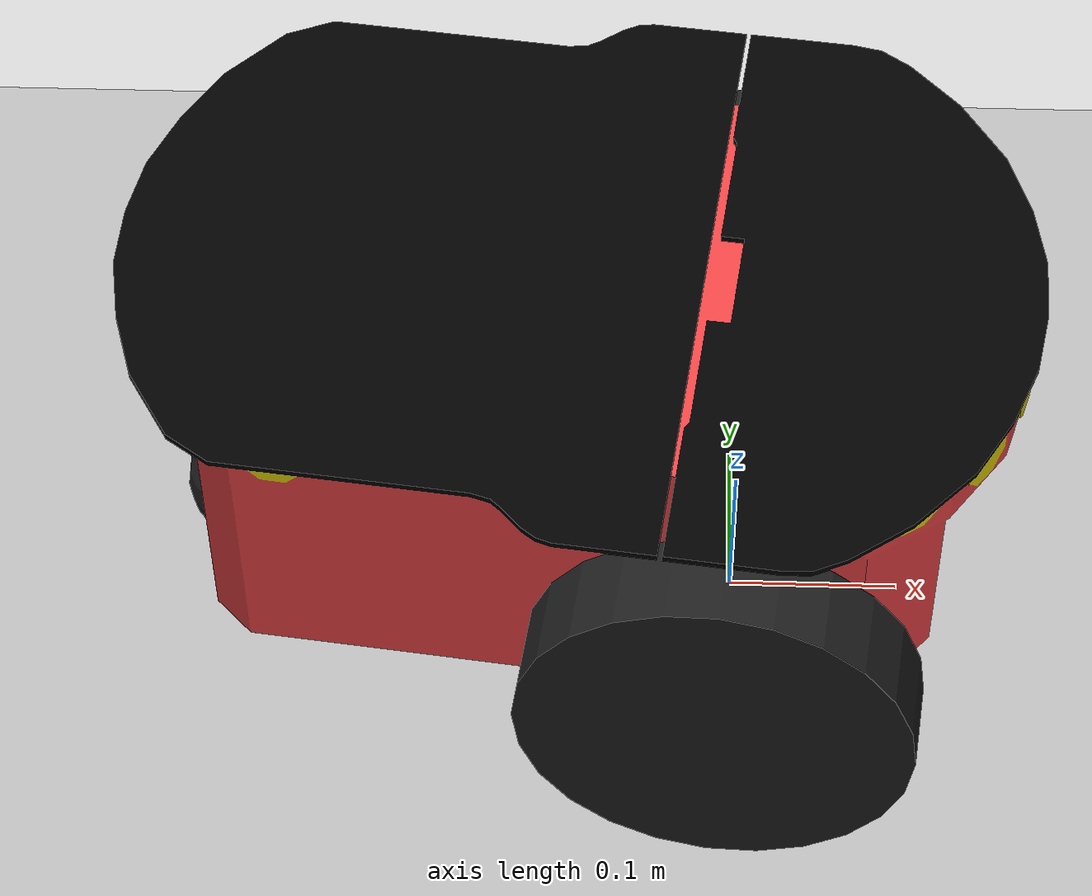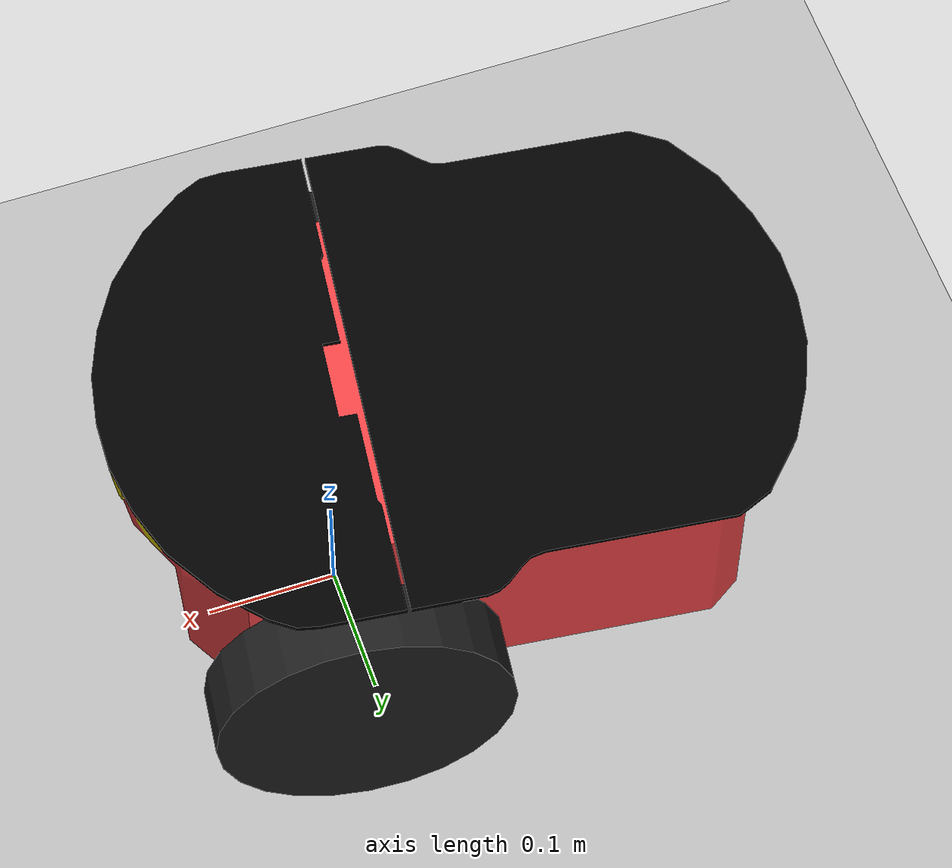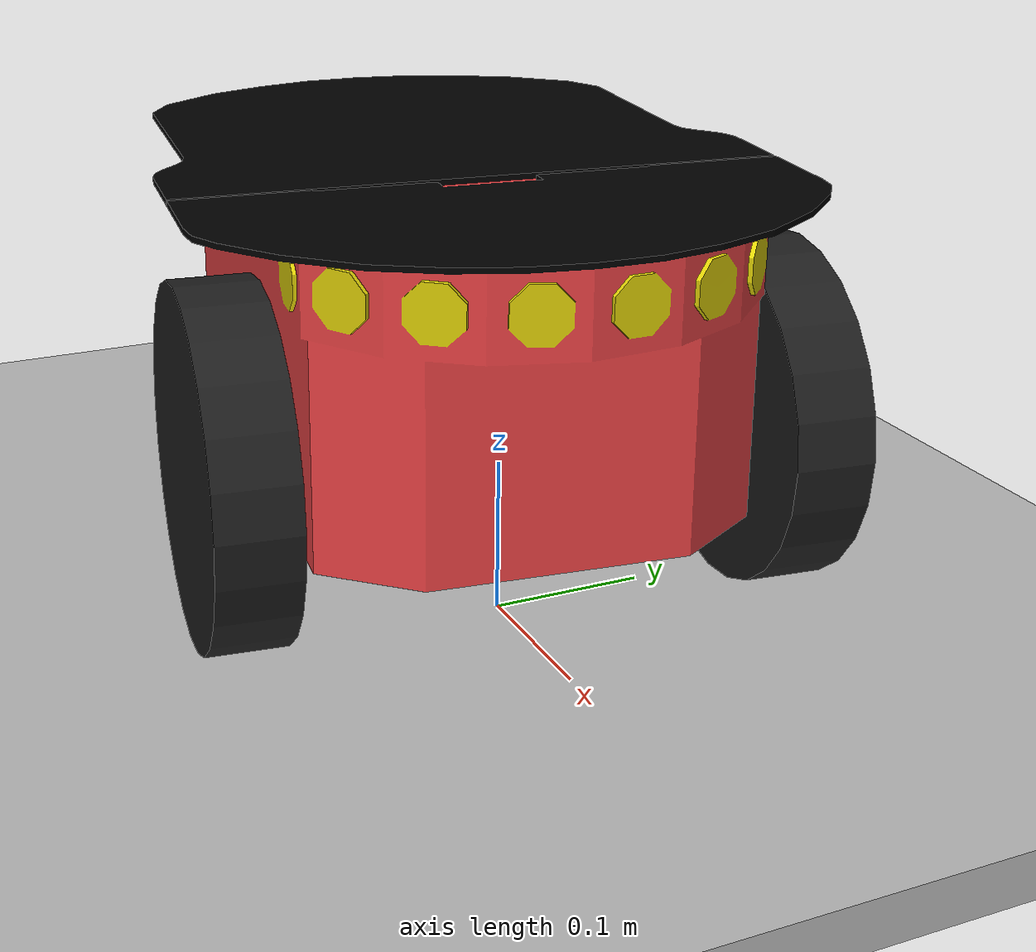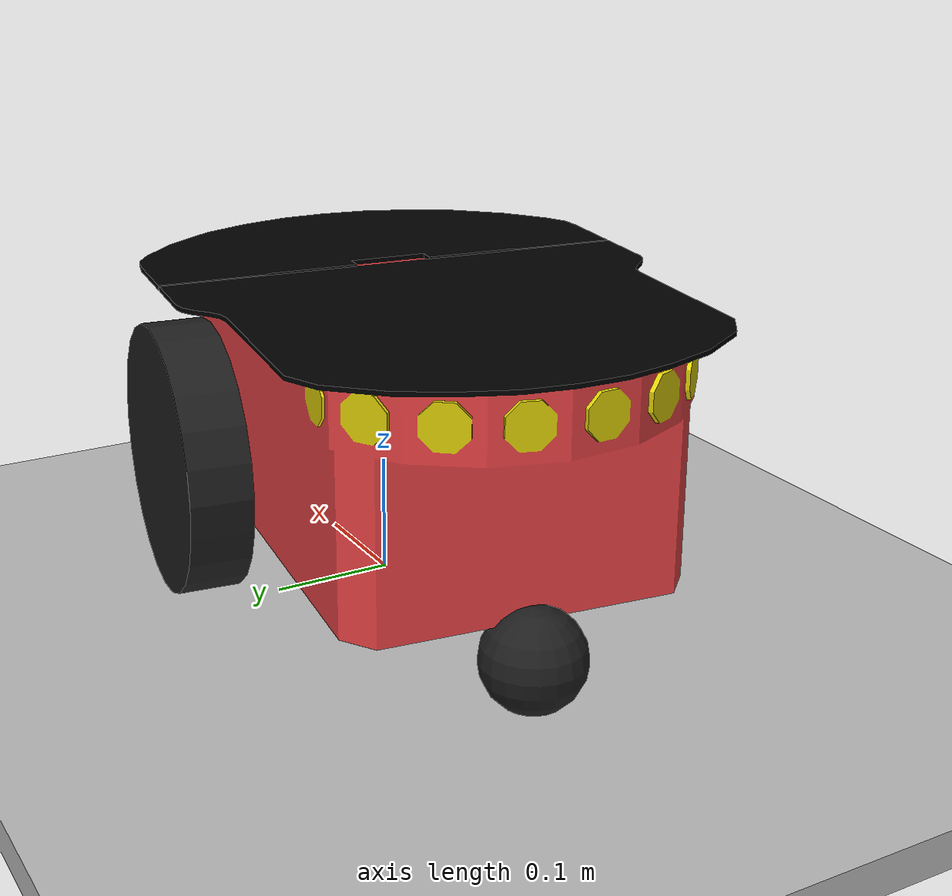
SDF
<sdf version="1.6">
 <world name="default">
  <light name="sun" type="directional">
   <pose>0 0 10 0 -0 0</pose>
   <diffuse>0.8 0.8 0.8 1</diffuse>
   <specular>0.2 0.2 0.2 1</specular>
   <attenuation>
    <range>1000</range>
    <constant>0.9</constant>
    <linear>0.01</linear>
    <quadratic>0.001</quadratic>
   </attenuation>
   <direction>-0.5 0.1 -0.9</direction>
  </light>
  <model name="ground_plane">
   <static>1</static>
   <link name="link">
    <collision name="collision">
     <geometry><plane><normal>0 0 1</normal><size>100 100</size></plane></geometry>
     <surface>
      <contact><collide_bitmask>65535</collide_bitmask></contact>
      <friction><ode><mu>100</mu><mu2>50</mu2></ode></friction>
     </surface>
    </collision>
    <visual name="visual">
     <cast_shadows>0</cast_shadows>
     <geometry><plane><normal>0 0 1</normal><size>100 100</size></plane></geometry>
     <material>
      <script><uri>file://media/materials/scripts/gazebo.material</uri><name>Gazebo/Grey</name></script>
     </material>
    </visual>
   </link>
  </model>
  <gravity>0 0 -9.8</gravity>
  <magnetic_field>6e-06 2.3e-05 -4.2e-05</magnetic_field>
  <atmosphere type="adiabatic"/>
  <physics name="default_physics" default="0" type="ode">
   <max_step_size>0.001</max_step_size>
   <real_time_factor>1</real_time_factor>
   <real_time_update_rate>1000</real_time_update_rate>
  </physics>
  <scene><ambient>0.4 0.4 0.4 1</ambient><background>0.7 0.7 0.7 1</background><shadows>1</shadows></scene>
  <spherical_coordinates>
   <surface_model>EARTH_WGS84</surface_model>
   <latitude_deg>0</latitude_deg>
   <longitude_deg>0</longitude_deg>
   <elevation>0</elevation>
   <heading_deg>0</heading_deg>
  </spherical_coordinates>
  <model name="my_robot">
   <static>0</static>
   <link name="chassis">
    <pose>-0 -0 0.16 0 -0 0</pose>
    <inertial>
     <mass>3.6</mass>
     <inertia><ixx>0</ixx><iyy>0</iyy><izz>0</izz><ixy>0</ixy><ixz>0</ixz><iyz>0</iyz></inertia>
    </inertial>
    <visual name="castor_visual">
     <pose>-0.2 0 -0.12 0 -0 0</pose>
     <geometry><sphere><radius>0.04</radius></sphere></geometry>
     <material>
      <script><uri>file://media/materials/scripts/gazebo.material</uri><name>Gazebo/FlatBlack</name></script>
      <ambient>0.1 0.1 0.1 1</ambient>
      <diffuse>0.1 0.1 0.1 1</diffuse>
      <specular>0.01 0.01 0.01 1</specular>
      <emissive>0 0 0 1</emissive>
     </material>
    </visual>
    <visual name="visual">
     <pose>0 0 0.04 0 -0 0</pose>
     <geometry><mesh><uri>model://pioneer2dx/meshes/chassis.dae</uri></mesh></geometry>
    </visual>
    <collision name="castor_collision">
     <pose>-0.2 0 -0.12 0 -0 0</pose>
     <geometry><sphere><radius>0.04</radius></sphere></geometry>
     <surface>
      <friction>
       <ode><mu>0</mu><mu2>0</mu2><fdir1>0 0 0</fdir1><slip1>1</slip1><slip2>1</slip2></ode>
       <torsional>
        <coefficient>1</coefficient>
        <patch_radius>0</patch_radius>
        <surface_radius>0</surface_radius>
        <use_patch_radius>1</use_patch_radius>
        <ode><slip>0</slip></ode>
       </torsional>
      </friction>
      <bounce><restitution_coefficient>0</restitution_coefficient><threshold>1e+06</threshold></bounce>
      <contact>
       <collide_without_contact>0</collide_without_contact>
       <collide_without_contact_bitmask>1</collide_without_contact_bitmask>
       <collide_bitmask>1</collide_bitmask>
       <ode>
        <soft_cfm>0</soft_cfm>
        <soft_erp>0.2</soft_erp>
        <kp>1e+13</kp>
        <kd>1</kd>
        <max_vel>0.01</max_vel>
        <min_depth>0</min_depth>
       </ode>
       <bullet>
        <split_impulse>1</split_impulse>
        <split_impulse_penetration_threshold>-0.01</split_impulse_penetration_threshold>
        <soft_cfm>0</soft_cfm>
        <soft_erp>0.2</soft_erp>
        <kp>1e+13</kp>
        <kd>1</kd>
       </bullet>
      </contact>
     </surface>
    </collision>
    <collision name="collision">
     <geometry><box><size>0.445 0.277 0.17</size></box></geometry>
     <surface>
      <friction>
       <ode><mu>1</mu><mu2>1</mu2><fdir1>0 0 0</fdir1><slip1>0</slip1><slip2>0</slip2></ode>
       <torsional>
        <coefficient>1</coefficient>
        <patch_radius>0</patch_radius>
        <surface_radius>0</surface_radius>
        <use_patch_radius>1</use_patch_radius>
        <ode><slip>0</slip></ode>
       </torsional>
      </friction>
      <bounce><restitution_coefficient>0</restitution_coefficient><threshold>1e+06</threshold></bounce>
      <contact>
       <collide_without_contact>0</collide_without_contact>
       <collide_without_contact_bitmask>1</collide_without_contact_bitmask>
       <collide_bitmask>1</collide_bitmask>
       <ode>
        <soft_cfm>0</soft_cfm>
        <soft_erp>0.2</soft_erp>
        <kp>1e+13</kp>
        <kd>1</kd>
        <max_vel>0.01</max_vel>
        <min_depth>0</min_depth>
       </ode>
       <bullet>
        <split_impulse>1</split_impulse>
        <split_impulse_penetration_threshold>-0.01</split_impulse_penetration_threshold>
        <soft_cfm>0</soft_cfm>
        <soft_erp>0.2</soft_erp>
        <kp>1e+13</kp>
        <kd>1</kd>
       </bullet>
      </contact>
     </surface>
    </collision>
   </link>
   <link name="left_wheel">
    <pose>0.1 -0.17 0.11 0.000239 1.5707 1.57094</pose>
    <inertial>
     <mass>1.5</mass>
     <inertia><ixx>0.0051</ixx><iyy>0.0051</iyy><izz>0.009</izz><ixy>0</ixy><ixz>0</ixz><iyz>0</iyz></inertia>
    </inertial>
    <visual name="visual">
     <geometry><cylinder><radius>0.11</radius><length>0.05</length></cylinder></geometry>
     <material>
      <script><uri>file://media/materials/scripts/gazebo.material</uri><name>Gazebo/FlatBlack</name></script>
      <ambient>0.1 0.1 0.1 1</ambient>
      <diffuse>0.1 0.1 0.1 1</diffuse>
      <specular>0.01 0.01 0.01 1</specular>
      <emissive>0 0 0 1</emissive>
     </material>
    </visual>
    <collision name="collision">
     <geometry><cylinder><radius>0.11</radius><length>0.05</length></cylinder></geometry>
     <surface>
      <friction>
       <ode><mu>100000</mu><mu2>100000</mu2><fdir1>0 0 0</fdir1><slip1>0</slip1><slip2>0</slip2></ode>
       <torsional>
        <coefficient>1</coefficient>
        <patch_radius>0</patch_radius>
        <surface_radius>0</surface_radius>
        <use_patch_radius>1</use_patch_radius>
        <ode><slip>0</slip></ode>
       </torsional>
      </friction>
      <bounce><restitution_coefficient>0</restitution_coefficient><threshold>1e+06</threshold></bounce>
      <contact>
       <collide_without_contact>0</collide_without_contact>
       <collide_without_contact_bitmask>1</collide_without_contact_bitmask>
       <collide_bitmask>1</collide_bitmask>
       <ode>
        <soft_cfm>0</soft_cfm>
        <soft_erp>0.2</soft_erp>
        <kp>1e+13</kp>
        <kd>1</kd>
        <max_vel>0.01</max_vel>
        <min_depth>0</min_depth>
       </ode>
       <bullet>
        <split_impulse>1</split_impulse>
        <split_impulse_penetration_threshold>-0.01</split_impulse_penetration_threshold>
        <soft_cfm>0</soft_cfm>
        <soft_erp>0.2</soft_erp>
        <kp>1e+13</kp>
        <kd>1</kd>
       </bullet>
      </contact>
     </surface>
    </collision>
   </link>
   <link name="right_wheel">
    <pose>0.1 0.17 0.11 0.000239 1.5707 1.57094</pose>
    <inertial>
     <mass>1.5</mass>
     <inertia><ixx>0.0051</ixx><iyy>0.089</iyy><izz>0.009</izz><ixy>0</ixy><ixz>0</ixz><iyz>0</iyz></inertia>
    </inertial>
    <visual name="visual">
     <geometry><cylinder><radius>0.11</radius><length>0.05</length></cylinder></geometry>
     <material>
      <script><uri>file://media/materials/scripts/gazebo.material</uri><name>Gazebo/FlatBlack</name></script>
      <ambient>0.1 0.1 0.1 1</ambient>
      <diffuse>0.1 0.1 0.1 1</diffuse>
      <specular>0.01 0.01 0.01 1</specular>
      <emissive>0 0 0 1</emissive>
     </material>
    </visual>
    <collision name="collision">
     <geometry><cylinder><radius>0.11</radius><length>0.05</length></cylinder></geometry>
     <surface>
      <friction>
       <ode><mu>100000</mu><mu2>100000</mu2><fdir1>0 0 0</fdir1><slip1>0</slip1><slip2>0</slip2></ode>
       <torsional>
        <coefficient>1</coefficient>
        <patch_radius>0</patch_radius>
        <surface_radius>0</surface_radius>
        <use_patch_radius>1</use_patch_radius>
        <ode><slip>0</slip></ode>
       </torsional>
      </friction>
      <bounce><restitution_coefficient>0</restitution_coefficient><threshold>1e+06</threshold></bounce>
      <contact>
       <collide_without_contact>0</collide_without_contact>
       <collide_without_contact_bitmask>1</collide_without_contact_bitmask>
       <collide_bitmask>1</collide_bitmask>
       <ode>
        <soft_cfm>0</soft_cfm>
        <soft_erp>0.2</soft_erp>
        <kp>1e+13</kp>
        <kd>1</kd>
        <max_vel>0.01</max_vel>
        <min_depth>0</min_depth>
       </ode>
       <bullet>
        <split_impulse>1</split_impulse>
        <split_impulse_penetration_threshold>-0.01</split_impulse_penetration_threshold>
        <soft_cfm>0</soft_cfm>
        <soft_erp>0.2</soft_erp>
        <kp>1e+13</kp>
        <kd>1</kd>
       </bullet>
      </contact>
     </surface>
    </collision>
   </link>
   <joint name="left_wheel_hinge" type="revolute">
    <parent>chassis</parent>
    <child>left_wheel</child>
    <pose>0 0 -0.03 0 -0 0</pose>
    <axis>
     <xyz>0 1 0</xyz>
     <use_parent_model_frame>1</use_parent_model_frame>
     <limit><lower>-1e+16</lower><upper>1e+16</upper><effort>-1</effort><velocity>-1</velocity></limit>
     <dynamics>
      <spring_reference>0</spring_reference>
      <spring_stiffness>0</spring_stiffness>
      <damping>0</damping>
      <friction>0</friction>
     </dynamics>
    </axis>
    <physics>
     <ode><limit><cfm>0</cfm><erp>0.2</erp></limit><suspension><cfm>0</cfm><erp>0.2</erp></suspension></ode>
    </physics>
   </joint>
   <joint name="right_wheel_hinge" type="revolute">
    <parent>chassis</parent>
    <child>right_wheel</child>
    <pose>0 0 0.03 0 -0 0</pose>
    <axis>
     <xyz>0 1 0</xyz>
     <use_parent_model_frame>1</use_parent_model_frame>
     <limit><lower>-1e+16</lower><upper>1e+16</upper><effort>-1</effort><velocity>-1</velocity></limit>
     <dynamics>
      <spring_reference>0</spring_reference>
      <spring_stiffness>0</spring_stiffness>
      <damping>0</damping>
      <friction>0</friction>
     </dynamics>
    </axis>
    <physics>
     <ode><limit><cfm>0</cfm><erp>0.2</erp></limit><suspension><cfm>0</cfm><erp>0.2</erp></suspension></ode>
    </physics>
   </joint>
   <plugin name="differential_drive_controller" filename="libgazebo_ros_diff_drive.so">
    <alwaysOn>1</alwaysOn>
    <updateRate>20</updateRate>
    <leftJoint>left_wheel_hinge</leftJoint>
    <rightJoint>right_wheel_hinge</rightJoint>
    <wheelSeparation>0.39</wheelSeparation>
    <wheelDiameter>0.15</wheelDiameter>
    <wheelTorque>20</wheelTorque>
    <commandTopic>/cmd_vel</commandTopic>
    <odometryTopic>/odom</odometryTopic>
    <odometryFrame>/odom</odometryFrame>
    <publishTf>1</publishTf>
    <publishWheelJointState>1</publishWheelJointState>
    <robotBaseFrame>base_link</robotBaseFrame>
    <robotNamespace>/</robotNamespace>
   </plugin>
   <pose>-0.089904 0.007324 0.015003 -3e-06 3e-06 -0.121057</pose>
  </model>
  <model name="my_ground_plane">
   <static>1</static>
   <link name="link">
    <collision name="collision"><geometry><box><size>25 25 0.03</size></box></geometry></collision>
    <visual name="visual">
     <cast_shadows>0</cast_shadows>
     <geometry><box><size>25 25 0.03</size></box></geometry>
     <material>
      <script>
       <uri>model://my_ground_plane/materials/scripts</uri>
       <uri>model://my_ground_plane/materials/textures/</uri>
       <name>MyGroundPlane/Image</name>
      </script>
     </material>
    </visual>
   </link>
   <pose>1.00337 -2.62483 0 0 -0 0</pose>
  </model>
 </world>
</sdf>
